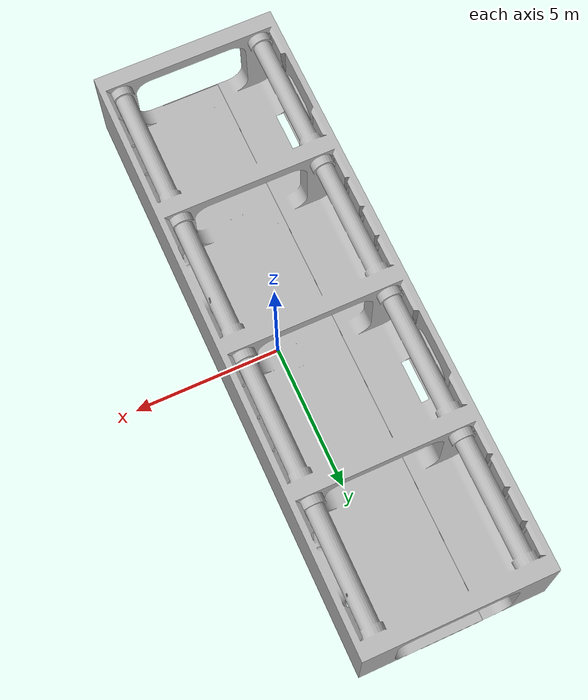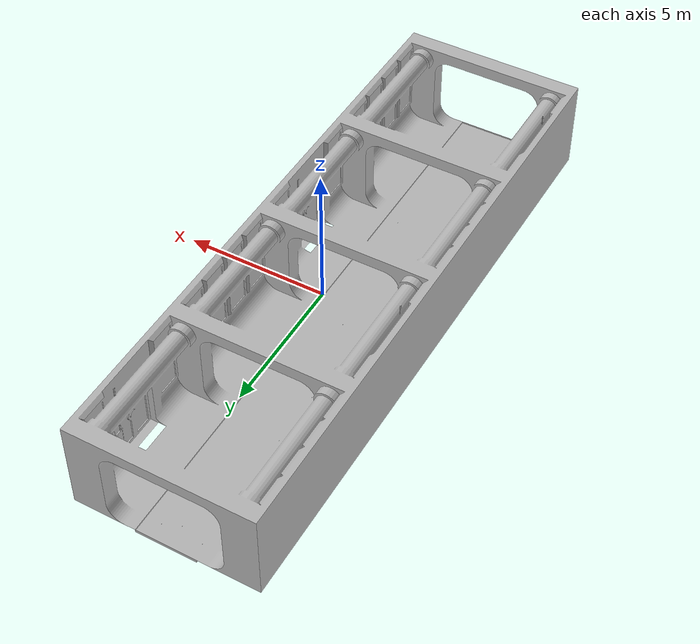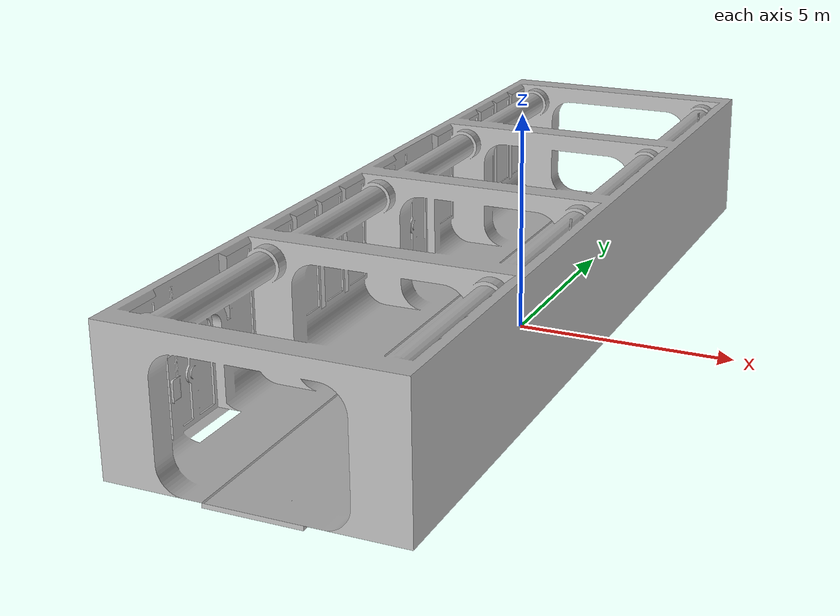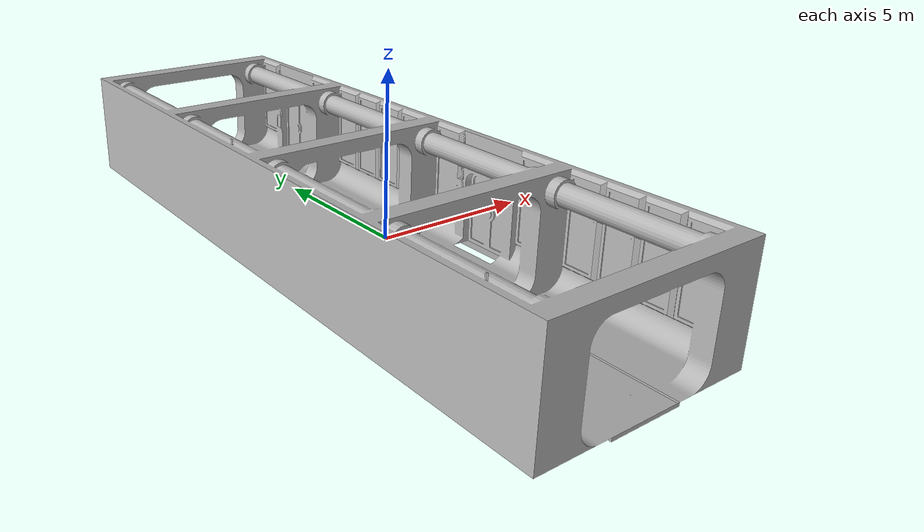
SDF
<?xml version="1.0" ?>
<sdf version="1.8">
    <world name="ship_world">
        <light type="directional" name="sun">
            <cast_shadows>true</cast_shadows>
            <pose>0 0 10 0 0 0</pose>
            <diffuse>0.8 0.8 0.8 1</diffuse>
            <specular>0.2 0.2 0.2 1</specular>
            <direction>-0.5 0.1 -0.9</direction>
        </light>

        <gravity>0 0 -9.81</gravity>

        <model name="ship_corridor"> <static>true</static>

            <link name="room_link">
                <pose>-2.5 -10 0 0 0 0</pose>

                <visual name="room_visual">
                    <geometry>
                        <mesh>
                            <uri>file:///home/alienware/ship_ws/src/ship_gazebo/models/ship_corridor.dae</uri>
                            <scale>1 1 1</scale>
                        </mesh>
                    </geometry>
                </visual>

                <collision name="room_collision">
                    <geometry>
                        <mesh>
                            <uri>file:///home/alienware/ship_ws/src/ship_gazebo/models/ship_corridor.stl</uri>
                            <scale>1 1 1</scale>
                        </mesh>
                    </geometry>
                    <surface>
                        <contact>
                            <collide_bitmask>0xffff</collide_bitmask>
                        </contact>
                        <friction>
                            <ode>
                                <mu>1.0</mu> <mu2>1.0</mu2>
                            </ode>
                        </friction>
                    </surface>
                </collision>
            </link>
        </model>

    </world>
</sdf>
